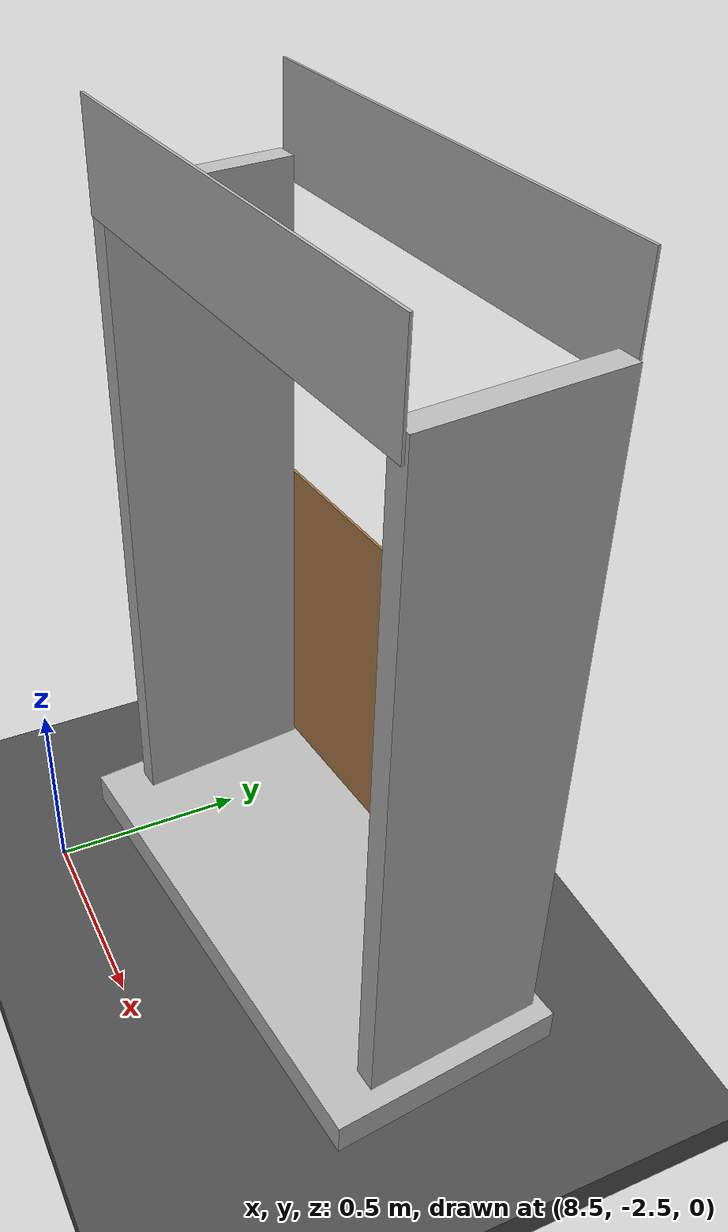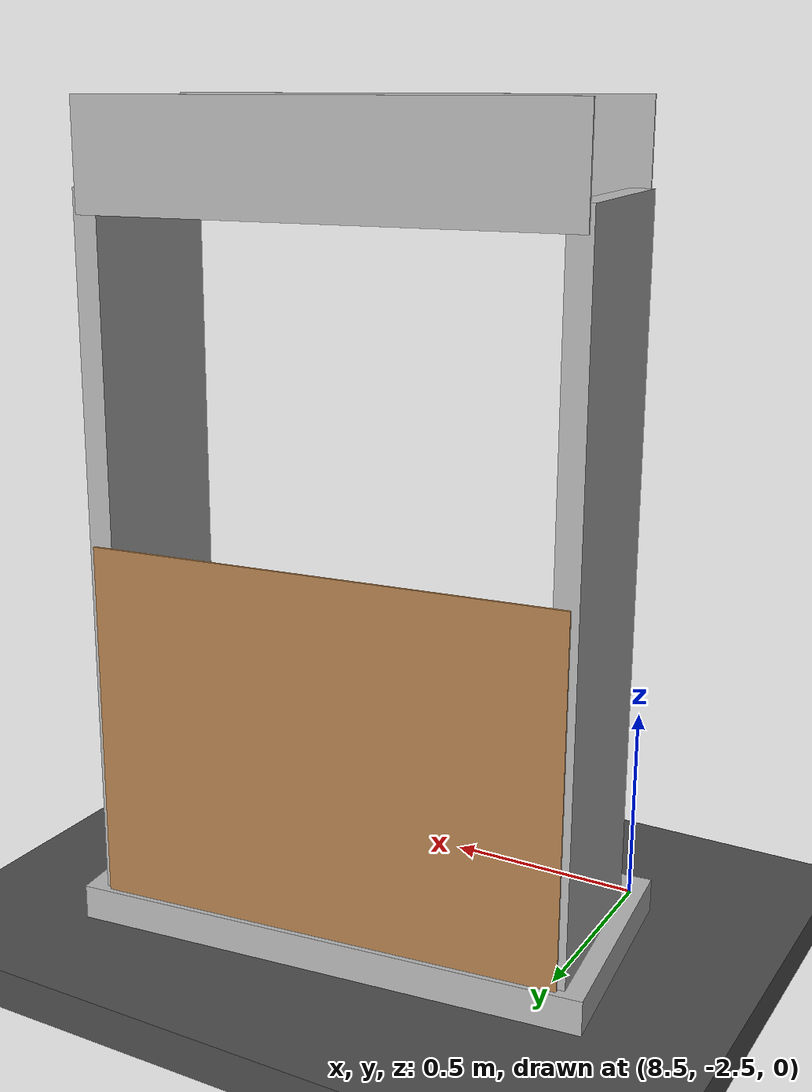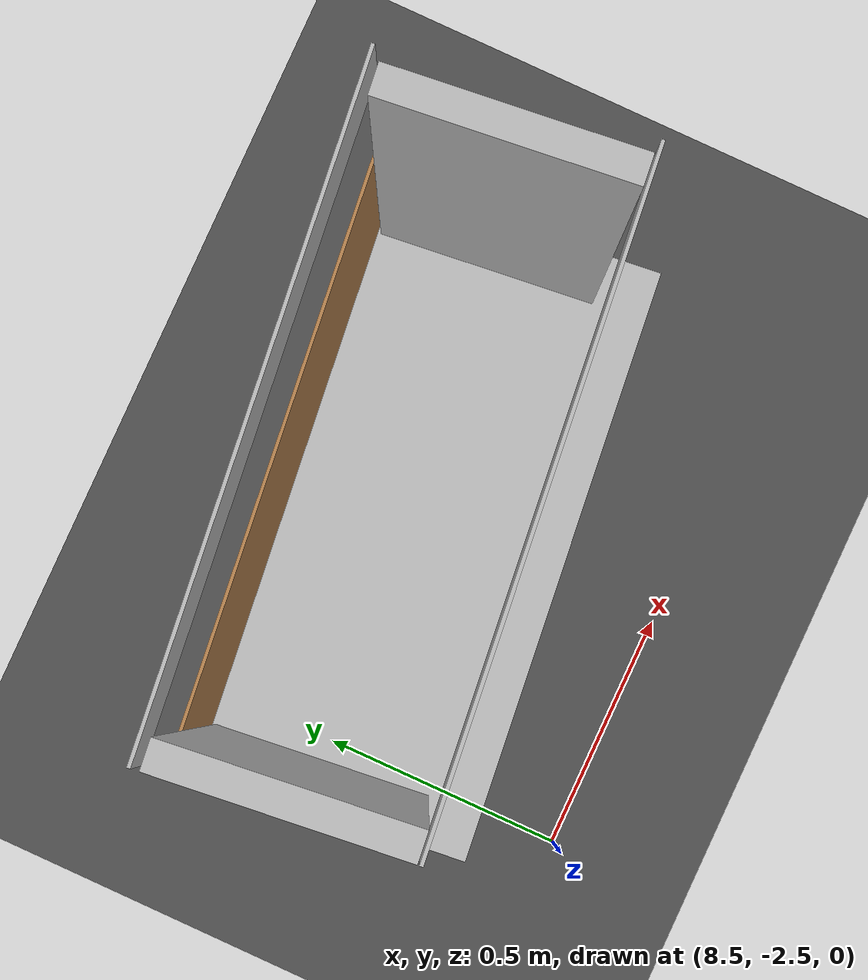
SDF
<sdf version="1.4">
 <world name="default">
  <model name="ground_plane">
   <static>1</static>
   <link name="link">
    <collision name="collision">
     <geometry><plane><normal>0 0 1</normal><size>100 100</size></plane></geometry>
     <surface><friction><ode><mu>100</mu><mu2>50</mu2></ode></friction></surface>
    </collision>
    <visual name="visual">
     <cast_shadows>0</cast_shadows>
     <geometry><plane><normal>0 0 1</normal><size>100 100</size></plane></geometry>
     <material>
      <script><uri>file://media/materials/scripts/gazebo.material</uri><name>Gazebo/Grey</name></script>
     </material>
    </visual>
    <velocity_decay><linear>0</linear><angular>0</angular></velocity_decay>
   </link>
  </model>
  <model name="asphalt_plane_0">
   <static>1</static>
   <link name="link">
    <collision name="collision"><geometry><box><size>20 20 0.1</size></box></geometry></collision>
    <visual name="visual">
     <cast_shadows>0</cast_shadows>
     <geometry><box><size>20 20 0.1</size></box></geometry>
     <material>
      <script>
       <uri>model://asphalt_plane/materials/scripts</uri>
       <uri>model://asphalt_plane/materials/textures</uri>
       <name>vrc/asphalt</name>
      </script>
     </material>
    </visual>
    <velocity_decay><linear>0</linear><angular>0</angular></velocity_decay>
   </link>
   <pose>-0.001842 0.030384 0 0 -0 0</pose>
  </model>
  <model name="frc2016_drawbridge">
   <link name="base">
    <inertial>
     <mass>10</mass>
     <pose>0 0 1 0 -0 0</pose>
     <inertia><ixx>3.64907</ixx><ixy>0</ixy><ixz>0</ixz><iyy>4.67075</iyy><iyz>0</iyz><izz>1.66649</izz></inertia>
    </inertial>
    <visual name="platform">
     <pose>0 0 0.0425 0 -0 0</pose>
     <geometry><box><size>1.27 0.5969 0.085</size></box></geometry>
    </visual>
    <collision name="platform">
     <pose>0 0 0.0425 0 -0 0</pose>
     <geometry><box><size>1.27 0.5969 0.085</size></box></geometry>
    </collision>
    <visual name="right_wall">
     <pose>0.55879 0.04444 0.889 0 -0 0</pose>
     <geometry><box><size>0.05715 0.45698 1.77165</size></box></geometry>
    </visual>
    <collision name="right_wall">
     <pose>0.55879 0.04444 0.889 0 -0 0</pose>
     <geometry><box><size>0.05715 0.45698 1.77165</size></box></geometry>
    </collision>
    <visual name="left_wall">
     <pose>-0.55879 0.04444 0.889 0 -0 0</pose>
     <geometry><box><size>0.05715 0.45698 1.77165</size></box></geometry>
    </visual>
    <collision name="left_wall">
     <pose>-0.55879 0.04444 0.889 0 -0 0</pose>
     <geometry><box><size>0.05715 0.45698 1.77165</size></box></geometry>
    </collision>
    <visual name="front_upper_wall">
     <pose>0 0.27611 1.84286 0 -0 0</pose>
     <geometry><box><size>1.1557 0.006347 0.254</size></box></geometry>
    </visual>
    <collision name="front_upper_wall">
     <pose>0 0.27611 1.84286 0 -0 0</pose>
     <geometry><box><size>1.1557 0.006347 0.254</size></box></geometry>
    </collision>
    <visual name="back_upper_wall">
     <pose>0 -0.18722 1.84286 0 -0 0</pose>
     <geometry><box><size>1.1557 0.006347 0.254</size></box></geometry>
    </visual>
    <collision name="back_upper_wall">
     <pose>0 -0.18722 1.84286 0 -0 0</pose>
     <geometry><box><size>1.1557 0.006347 0.254</size></box></geometry>
    </collision>
    <velocity_decay><linear>0</linear><angular>0</angular></velocity_decay>
   </link>
   <link name="bridge">
    <pose>0 0.28245 0.50577 0 -0 0</pose>
    <inertial>
     <mass>2</mass>
     <pose>0 -0.28245 -0.50577 0 -0 0</pose>
     <inertia>
      <ixx>0.139361</ixx>
      <ixy>0</ixy>
      <ixz>0</ixz>
      <iyy>0.357088</iyy>
      <iyz>0</iyz>
      <izz>0.217741</izz>
     </inertia>
    </inertial>
    <visual name="visual">
     <geometry><box><size>1.14298 0.006347 0.9144</size></box></geometry>
     <material><script><name>Gazebo/WoodFloor</name><uri>__default__</uri></script></material>
    </visual>
    <collision name="collision"><geometry><box><size>1.14298 0.006347 0.9144</size></box></geometry></collision>
    <velocity_decay><linear>0</linear><angular>0</angular></velocity_decay>
   </link>
   <joint name="bridge_joint" type="revolute">
    <pose>0 0 -0.4172 0 -0 0</pose>
    <parent>base</parent>
    <child>bridge</child>
    <axis><xyz>1 0 0</xyz><limit><lower>-2</lower><upper>0</upper></limit></axis>
   </joint>
   <pose>8.99159 -1.98496 0.05 0 -0 0.107527</pose>
   <static>0</static>
  </model>
 </world>
</sdf>
